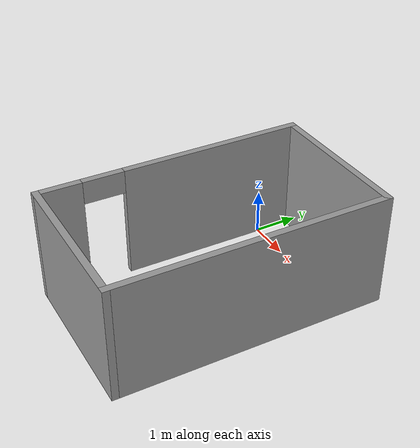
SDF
<?xml version='1.0'?>
<sdf version='1.7'>
  <model name='contour_labo_3it'>
    <pose>1.63768 -2.11284 0 0 -0 0</pose>
    <link name='Wall_52'>
      <collision name='Wall_52_Collision'>
        <geometry>
          <box>
            <size>3.5 0.15 2.5</size>
          </box>
        </geometry>
        <pose>0 0 1.25 0 -0 0</pose>
      </collision>
      <visual name='Wall_52_Visual'>
        <pose>0 0 1.25 0 -0 0</pose>
        <geometry>
          <box>
            <size>3.5 0.15 2.5</size>
          </box>
        </geometry>
        <material>
          <script>
            <uri>file://media/materials/scripts/gazebo.material</uri>
            <name>Gazebo/Grey</name>
          </script>
          <ambient>1 1 1 1</ambient>
        </material>
        <meta>
          <layer>0</layer>
        </meta>
      </visual>
      <pose>0 -2.925 0 0 -0 3.14159</pose>
    </link>
    <link name='Wall_53'>
      <pose>-1.675 0 0 0 -0 1.5708</pose>
      <visual name='Wall_53_Visual_0'>
        <pose>-2.49728 0 1.25 0 -0 0</pose>
        <geometry>
          <box>
            <size>1.00545 0.15 2.5</size>
          </box>
        </geometry>
        <material>
          <script>
            <uri>file://media/materials/scripts/gazebo.material</uri>
            <name>Gazebo/Grey</name>
          </script>
          <ambient>1 1 1 1</ambient>
        </material>
        <meta>
          <layer>0</layer>
        </meta>
      </visual>
      <collision name='Wall_53_Collision_0'>
        <geometry>
          <box>
            <size>1.00545 0.15 2.5</size>
          </box>
        </geometry>
        <pose>-2.49728 0 1.25 0 -0 0</pose>
      </collision>
      <visual name='Wall_53_Visual_1'>
        <pose>0.952724 0 1.25 0 -0 0</pose>
        <geometry>
          <box>
            <size>4.09455 0.15 2.5</size>
          </box>
        </geometry>
        <material>
          <script>
            <uri>file://media/materials/scripts/gazebo.material</uri>
            <name>Gazebo/Grey</name>
          </script>
          <ambient>1 1 1 1</ambient>
        </material>
        <meta>
          <layer>0</layer>
        </meta>
      </visual>
      <collision name='Wall_53_Collision_1'>
        <geometry>
          <box>
            <size>4.09455 0.15 2.5</size>
          </box>
        </geometry>
        <pose>0.952724 0 1.25 0 -0 0</pose>
      </collision>
      <visual name='Wall_53_Visual_2'>
        <pose>-1.54455 0 2.25 0 -0 0</pose>
        <geometry>
          <box>
            <size>0.9 0.15 0.5</size>
          </box>
        </geometry>
        <material>
          <script>
            <uri>file://media/materials/scripts/gazebo.material</uri>
            <name>Gazebo/Grey</name>
          </script>
          <ambient>1 1 1 1</ambient>
        </material>
        <meta>
          <layer>0</layer>
        </meta>
      </visual>
      <collision name='Wall_53_Collision_2'>
        <geometry>
          <box>
            <size>0.9 0.15 0.5</size>
          </box>
        </geometry>
        <pose>-1.54455 0 2.25 0 -0 0</pose>
      </collision>
    </link>
    <link name='Wall_54'>
      <collision name='Wall_54_Collision'>
        <geometry>
          <box>
            <size>3.5 0.15 2.5</size>
          </box>
        </geometry>
        <pose>0 0 1.25 0 -0 0</pose>
      </collision>
      <visual name='Wall_54_Visual'>
        <pose>0 0 1.25 0 -0 0</pose>
        <geometry>
          <box>
            <size>3.5 0.15 2.5</size>
          </box>
        </geometry>
        <material>
          <script>
            <uri>file://media/materials/scripts/gazebo.material</uri>
            <name>Gazebo/Grey</name>
          </script>
          <ambient>1 1 1 1</ambient>
        </material>
        <meta>
          <layer>0</layer>
        </meta>
      </visual>
      <pose>0 2.925 0 0 -0 0</pose>
    </link>
    <link name='Wall_55'>
      <collision name='Wall_55_Collision'>
        <geometry>
          <box>
            <size>6 0.15 2.5</size>
          </box>
        </geometry>
        <pose>0 0 1.25 0 -0 0</pose>
      </collision>
      <visual name='Wall_55_Visual'>
        <pose>0 0 1.25 0 -0 0</pose>
        <geometry>
          <box>
            <size>6 0.15 2.5</size>
          </box>
        </geometry>
        <material>
          <script>
            <uri>file://media/materials/scripts/gazebo.material</uri>
            <name>Gazebo/Grey</name>
          </script>
          <ambient>1 1 1 1</ambient>
        </material>
        <meta>
          <layer>0</layer>
        </meta>
      </visual>
      <pose>1.675 0 0 0 -0 -1.5708</pose>
    </link>
    <static>1</static>
  </model>
</sdf>
